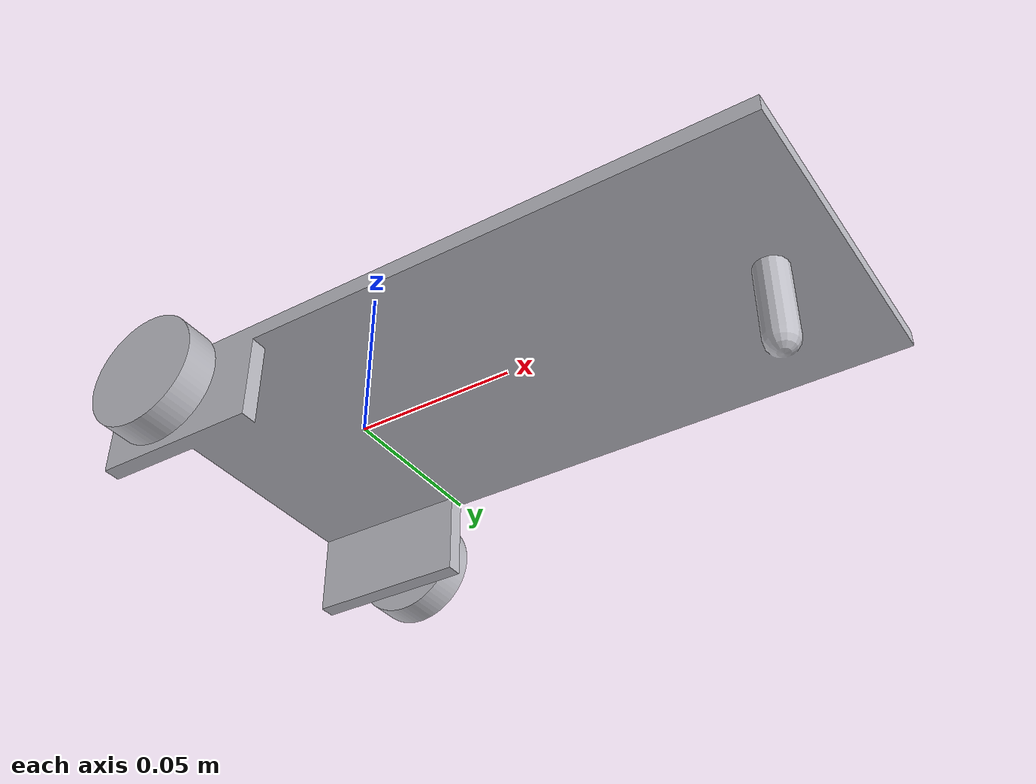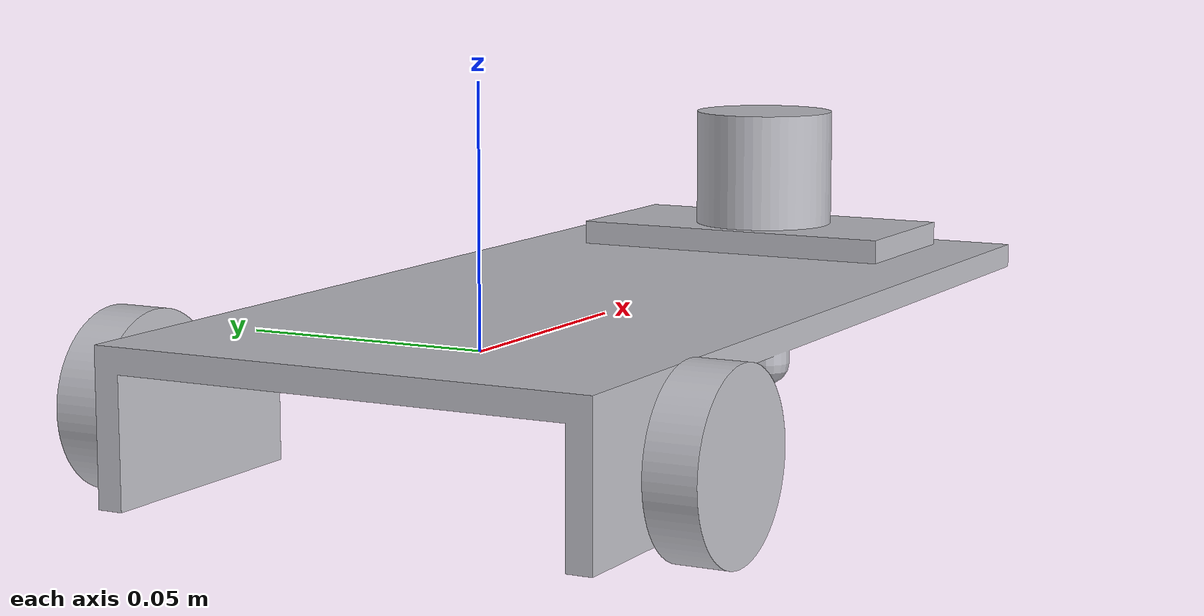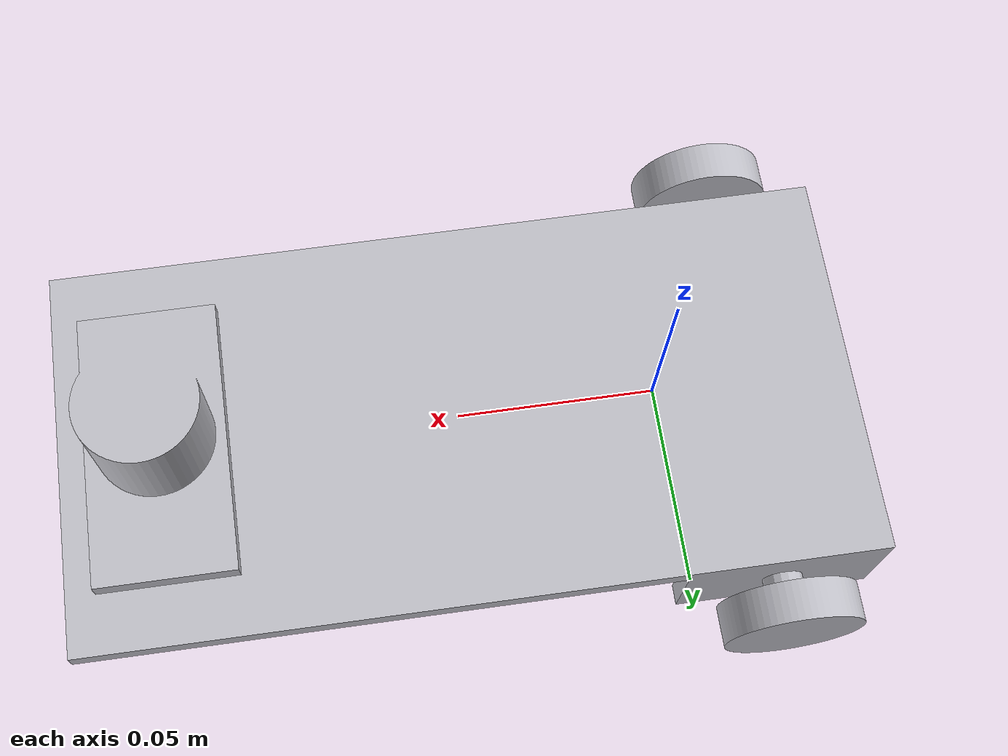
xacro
<?xml version="1.0" ?>
<robot name="(Unsaved)" xmlns:xacro="http://www.ros.org/wiki/xacro">

<xacro:include filename="$(find (Unsaved)_description)/urdf/materials.xacro" />
<xacro:include filename="$(find (Unsaved)_description)/urdf/(Unsaved).trans" />
<xacro:include filename="$(find (Unsaved)_description)/urdf/(Unsaved).gazebo" />
<link name="base_link">
  <inertial>
    <origin xyz="0.04279651824334455 -3.9422029164992075e-17 0.0005080896513098832" rpy="0 0 0"/>
    <mass value="0.9055258646170352"/>
    <inertia ixx="0.000924" iyy="0.003312" izz="0.004174" ixy="-0.0" iyz="-0.0" ixz="-8.3e-05"/>
  </inertial>
  <visual>
    <origin xyz="0 0 0" rpy="0 0 0"/>
    <geometry>
      <mesh filename="package://(Unsaved)_description/meshes/base_link.stl" scale="0.001 0.001 0.001"/>
    </geometry>
    <material name="silver"/>
  </visual>
  <collision>
    <origin xyz="0 0 0" rpy="0 0 0"/>
    <geometry>
      <mesh filename="package://(Unsaved)_description/meshes/base_link.stl" scale="0.001 0.001 0.001"/>
    </geometry>
  </collision>
</link>

<link name="wheel2_1">
  <inertial>
    <origin xyz="-1.734723475976807e-17 0.0049999999999999975 0.0" rpy="0 0 0"/>
    <mass value="0.07552585088770711"/>
    <inertia ixx="6e-06" iyy="1.2e-05" izz="6e-06" ixy="0.0" iyz="0.0" ixz="-0.0"/>
  </inertial>
  <visual>
    <origin xyz="0.025 -0.055 0.01" rpy="0 0 0"/>
    <geometry>
      <mesh filename="package://(Unsaved)_description/meshes/wheel2_1.stl" scale="0.001 0.001 0.001"/>
    </geometry>
    <material name="silver"/>
  </visual>
  <collision>
    <origin xyz="0.025 -0.055 0.01" rpy="0 0 0"/>
    <geometry>
      <mesh filename="package://(Unsaved)_description/meshes/wheel2_1.stl" scale="0.001 0.001 0.001"/>
    </geometry>
  </collision>
</link>

<link name="wheel1_1">
  <inertial>
    <origin xyz="2.0816681711721685e-17 -0.0049999999999999975 0.0" rpy="0 0 0"/>
    <mass value="0.07552585088770711"/>
    <inertia ixx="6e-06" iyy="1.2e-05" izz="6e-06" ixy="0.0" iyz="-0.0" ixz="-0.0"/>
  </inertial>
  <visual>
    <origin xyz="0.025 0.055 0.01" rpy="0 0 0"/>
    <geometry>
      <mesh filename="package://(Unsaved)_description/meshes/wheel1_1.stl" scale="0.001 0.001 0.001"/>
    </geometry>
    <material name="silver"/>
  </visual>
  <collision>
    <origin xyz="0.025 0.055 0.01" rpy="0 0 0"/>
    <geometry>
      <mesh filename="package://(Unsaved)_description/meshes/wheel1_1.stl" scale="0.001 0.001 0.001"/>
    </geometry>
  </collision>
</link>

<link name="lidar_1">
  <inertial>
    <origin xyz="-0.024999999999999967 -0.0005340079970784894 0.011358922387875836" rpy="0 0 0"/>
    <mass value="0.23488345061007426"/>
    <inertia ixx="6.7e-05" iyy="3.8e-05" izz="6.5e-05" ixy="0.0" iyz="1e-06" ixz="0.0"/>
  </inertial>
  <visual>
    <origin xyz="-0.15 -0.0 -0.005" rpy="0 0 0"/>
    <geometry>
      <mesh filename="package://(Unsaved)_description/meshes/lidar_1.stl" scale="0.001 0.001 0.001"/>
    </geometry>
    <material name="silver"/>
  </visual>
  <collision>
    <origin xyz="-0.15 -0.0 -0.005" rpy="0 0 0"/>
    <geometry>
      <mesh filename="package://(Unsaved)_description/meshes/lidar_1.stl" scale="0.001 0.001 0.001"/>
    </geometry>
  </collision>
</link>

<joint name="Rev1" type="continuous">
  <origin xyz="-0.025 0.055 -0.01" rpy="0 0 0"/>
  <parent link="base_link"/>
  <child link="wheel2_1"/>
  <axis xyz="0.0 1.0 0.0"/>
</joint>

<joint name="Rev2" type="continuous">
  <origin xyz="-0.025 -0.055 -0.01" rpy="0 0 0"/>
  <parent link="base_link"/>
  <child link="wheel1_1"/>
  <axis xyz="0.0 1.0 0.0"/>
</joint>

<joint name="Rigid3" type="fixed">
  <origin xyz="0.15 0.0 0.005" rpy="0 0 0"/>
  <parent link="base_link"/>
  <child link="lidar_1"/>
</joint>

</robot>

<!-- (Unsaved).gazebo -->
<robot name="(Unsaved)" xmlns:xacro="http://www.ros.org/wiki/xacro" >

<xacro:property name="body_color" value="Gazebo/Silver" />

<gazebo>
  <plugin name="control" filename="libgazebo_ros_control.so"/>
</gazebo>
<gazebo reference="base_link">
  <material>${body_color}</material>
  <mu1>0.2</mu1>
  <mu2>0.2</mu2>
  <selfCollide>true</selfCollide>
  <gravity>true</gravity>
</gazebo>

<gazebo reference="wheel2_1">
  <material>${body_color}</material>
  <mu1>0.2</mu1>
  <mu2>0.2</mu2>
  <selfCollide>true</selfCollide>
</gazebo>

<gazebo reference="wheel1_1">
  <material>${body_color}</material>
  <mu1>0.2</mu1>
  <mu2>0.2</mu2>
  <selfCollide>true</selfCollide>
</gazebo>

<gazebo reference="lidar_1">
  <material>${body_color}</material>
  <mu1>0.2</mu1>
  <mu2>0.2</mu2>
  <selfCollide>true</selfCollide>
</gazebo>
  <gazebo>
  <plugin name="differential_drive_controller" filename="libgazebo_ros_diff_drive.so">

    <!-- Plugin update rate in Hz -->
    <updateRate>${1000}</updateRate>

    <!-- Name of left joint, defaults to `left_joint` -->
    <leftJoint>Rev1</leftJoint>

    <!-- Name of right joint, defaults to `right_joint` -->
    <rightJoint>Rev2</rightJoint>

    <!-- The distance from the center of one wheel to the other, in meters, defaults to 0.34 m -->
    <wheelSeparation>0.5380</wheelSeparation>

    <!-- Diameter of the wheels, in meters, defaults to 0.15 m -->
    <wheelDiameter>0.2410</wheelDiameter>

    <!-- Wheel acceleration, in rad/s^2, defaults to 0.0 rad/s^2 -->
    <wheelAcceleration>1.0</wheelAcceleration>

    <!-- Maximum torque which the wheels can produce, in Nm, defaults to 5 Nm -->
    <wheelTorque>20</wheelTorque>

    <!-- Topic to receive geometry_msgs/Twist message commands, defaults to `cmd_vel` -->
    <commandTopic>cmd_vel</commandTopic>

    <!-- Topic to publish nav_msgs/Odometry messages, defaults to `odom` -->
    <odometryTopic>odom</odometryTopic>

    <!-- Odometry frame, defaults to `odom` -->
    <odometryFrame>odom</odometryFrame>

    <!-- Robot frame to calculate odometry from, defaults to `base_footprint` -->
    <robotBaseFrame>base_link</robotBaseFrame>

    <!-- Odometry source, 0 for ENCODER, 1 for WORLD, defaults to WORLD -->
    <odometrySource>1</odometrySource>

    <!-- Set to true to publish transforms for the wheel links, defaults to false -->
    <publishWheelTF>true</publishWheelTF>

    <!-- Set to true to publish transforms for the odometry, defaults to true -->
    <publishOdom>true</publishOdom>

    <!-- Set to true to publish sensor_msgs/JointState on /joint_states for the wheel joints, defaults to false -->
    <publishWheelJointState>true</publishWheelJointState>

    <!-- Set to true to swap right and left wheels, defaults to true -->
    <legacyMode>false</legacyMode>
  </plugin>

</gazebo>

</robot>
